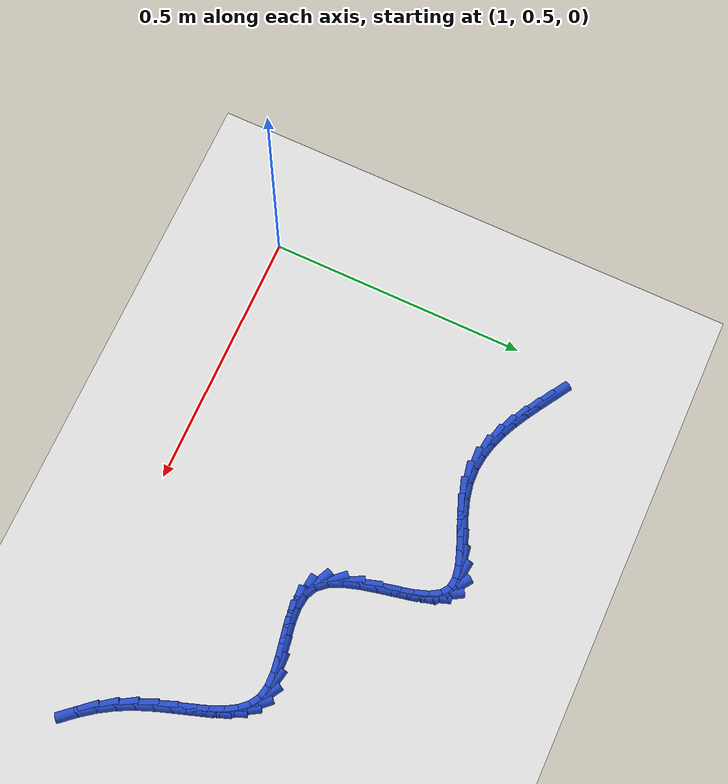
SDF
<sdf version="1.6">
 <world name="default">
  <model name="ground_plane">
   <static>1</static>
   <link name="link">
    <collision name="collision">
     <geometry><plane><normal>0 0 1</normal><size>100 100</size></plane></geometry>
     <surface><friction><ode><mu>100</mu><mu2>50</mu2></ode></friction></surface>
    </collision>
    <visual name="visual">
     <cast_shadows>0</cast_shadows>
     <geometry><plane><normal>0 0 1</normal><size>100 100</size></plane></geometry>
     <material>
      <script><uri>file://media/materials/scripts/gazebo.material</uri><name>Gazebo/WhiteGlow</name></script>
     </material>
    </visual>
   </link>
  </model>
  <model name="line">
   <link name="link_64">
    <pose>1.0613613626021448 1.0904840678474084 0.01 0 1.57 -0.5577023526416753</pose>
    <collision name="collision">
     <geometry><cylinder><radius>0.01</radius><length>0.08</length></cylinder></geometry>
    </collision>
    <visual name="visual">
     <material>
      <script><name>Gazebo/Blue</name><uri>file://media/materials/scripts/gazebo.material</uri></script>
     </material>
     <geometry><cylinder><radius>0.01</radius><length>0.08</length></cylinder></geometry>
    </visual>
   </link>
   <link name="link_65">
    <pose>1.0863397412017957 1.0749037202740948 0.01 0 1.57 -0.5380360521402066</pose>
    <collision name="collision">
     <geometry><cylinder><radius>0.01</radius><length>0.08</length></cylinder></geometry>
    </collision>
    <visual name="visual">
     <material>
      <script><name>Gazebo/Blue</name><uri>file://media/materials/scripts/gazebo.material</uri></script>
     </material>
     <geometry><cylinder><radius>0.01</radius><length>0.08</length></cylinder></geometry>
    </visual>
   </link>
   <link name="link_66">
    <pose>1.1116576927726431 1.059794900164531 0.01 0 1.57 -0.4981963521127707</pose>
    <collision name="collision">
     <geometry><cylinder><radius>0.01</radius><length>0.08</length></cylinder></geometry>
    </collision>
    <visual name="visual">
     <material>
      <script><name>Gazebo/Blue</name><uri>file://media/materials/scripts/gazebo.material</uri></script>
     </material>
     <geometry><cylinder><radius>0.01</radius><length>0.08</length></cylinder></geometry>
    </visual>
   </link>
   <link name="link_67">
    <pose>1.1374019233252106 1.0457909950773805 0.01 0 1.57 -0.4370097366161705</pose>
    <collision name="collision">
     <geometry><cylinder><radius>0.01</radius><length>0.08</length></cylinder></geometry>
    </collision>
    <visual name="visual">
     <material>
      <script><name>Gazebo/Blue</name><uri>file://media/materials/scripts/gazebo.material</uri></script>
     </material>
     <geometry><cylinder><radius>0.01</radius><length>0.08</length></cylinder></geometry>
    </visual>
   </link>
   <link name="link_68">
    <pose>1.1636591388700213 1.033525392571308 0.01 0 1.57 -0.35296621191783484</pose>
    <collision name="collision">
     <geometry><cylinder><radius>0.01</radius><length>0.08</length></cylinder></geometry>
    </collision>
    <visual name="visual">
     <material>
      <script><name>Gazebo/Blue</name><uri>file://media/materials/scripts/gazebo.material</uri></script>
     </material>
     <geometry><cylinder><radius>0.01</radius><length>0.08</length></cylinder></geometry>
    </visual>
   </link>
   <link name="link_69">
    <pose>1.1905160454175991 1.0236314802049775 0.01 0 1.57 -0.24508147279829431</pose>
    <collision name="collision">
     <geometry><cylinder><radius>0.01</radius><length>0.08</length></cylinder></geometry>
    </collision>
    <visual name="visual">
     <material>
      <script><name>Gazebo/Blue</name><uri>file://media/materials/scripts/gazebo.material</uri></script>
     </material>
     <geometry><cylinder><radius>0.01</radius><length>0.08</length></cylinder></geometry>
    </visual>
   </link>
   <link name="link_70">
    <pose>1.2180593489784677 1.0167426455370534 0.01 0 1.57 -0.11428729150965329</pose>
    <collision name="collision">
     <geometry><cylinder><radius>0.01</radius><length>0.08</length></cylinder></geometry>
    </collision>
    <visual name="visual">
     <material>
      <script><name>Gazebo/Blue</name><uri>file://media/materials/scripts/gazebo.material</uri></script>
     </material>
     <geometry><cylinder><radius>0.01</radius><length>0.08</length></cylinder></geometry>
    </visual>
   </link>
   <link name="link_71">
    <pose>1.2463757555631507 1.0134922761262006 0.01 0 1.57 0.034996531459187845</pose>
    <collision name="collision">
     <geometry><cylinder><radius>0.01</radius><length>0.08</length></cylinder></geometry>
    </collision>
    <visual name="visual">
     <material>
      <script><name>Gazebo/Blue</name><uri>file://media/materials/scripts/gazebo.material</uri></script>
     </material>
     <geometry><cylinder><radius>0.01</radius><length>0.08</length></cylinder></geometry>
    </visual>
   </link>
   <link name="link_72">
    <pose>1.2755519711821708 1.0145137595310822 0.01 0 1.57 0.19273076693864225</pose>
    <collision name="collision">
     <geometry><cylinder><radius>0.01</radius><length>0.08</length></cylinder></geometry>
    </collision>
    <visual name="visual">
     <material>
      <script><name>Gazebo/Blue</name><uri>file://media/materials/scripts/gazebo.material</uri></script>
     </material>
     <geometry><cylinder><radius>0.01</radius><length>0.08</length></cylinder></geometry>
    </visual>
   </link>
   <link name="link_73">
    <pose>1.3056576645841445 1.0203889789914729 0.01 0 1.57 0.3146425083497597</pose>
    <collision name="collision">
     <geometry><cylinder><radius>0.01</radius><length>0.08</length></cylinder></geometry>
    </collision>
    <visual name="visual">
     <material>
      <script><name>Gazebo/Blue</name><uri>file://media/materials/scripts/gazebo.material</uri></script>
     </material>
     <geometry><cylinder><radius>0.01</radius><length>0.08</length></cylinder></geometry>
    </visual>
   </link>
   <link name="link_74">
    <pose>1.3363222430851602 1.0303688899644101 0.01 0 1.57 0.3738013823674872</pose>
    <collision name="collision">
     <geometry><cylinder><radius>0.01</radius><length>0.08</length></cylinder></geometry>
    </collision>
    <visual name="visual">
     <material>
      <script><name>Gazebo/Blue</name><uri>file://media/materials/scripts/gazebo.material</uri></script>
     </material>
     <geometry><cylinder><radius>0.01</radius><length>0.08</length></cylinder></geometry>
    </visual>
   </link>
   <link name="link_75">
    <pose>1.3667061539668321 1.0422867631115629 0.01 0 1.57 0.37825981146786636</pose>
    <collision name="collision">
     <geometry><cylinder><radius>0.01</radius><length>0.08</length></cylinder></geometry>
    </collision>
    <visual name="visual">
     <material>
      <script><name>Gazebo/Blue</name><uri>file://media/materials/scripts/gazebo.material</uri></script>
     </material>
     <geometry><cylinder><radius>0.01</radius><length>0.08</length></cylinder></geometry>
    </visual>
   </link>
   <link name="link_76">
    <pose>1.395947060352348 1.0539069916794725 0.01 0 1.57 0.3220299427260602</pose>
    <collision name="collision">
     <geometry><cylinder><radius>0.01</radius><length>0.08</length></cylinder></geometry>
    </collision>
    <visual name="visual">
     <material>
      <script><name>Gazebo/Blue</name><uri>file://media/materials/scripts/gazebo.material</uri></script>
     </material>
     <geometry><cylinder><radius>0.01</radius><length>0.08</length></cylinder></geometry>
    </visual>
   </link>
   <link name="link_77">
    <pose>1.423182625364898 1.062993968914682 0.01 0 1.57 0.17538465028722955</pose>
    <collision name="collision">
     <geometry><cylinder><radius>0.01</radius><length>0.08</length></cylinder></geometry>
    </collision>
    <visual name="visual">
     <material>
      <script><name>Gazebo/Blue</name><uri>file://media/materials/scripts/gazebo.material</uri></script>
     </material>
     <geometry><cylinder><radius>0.01</radius><length>0.08</length></cylinder></geometry>
    </visual>
   </link>
   <link name="link_78">
    <pose>1.447550512127672 1.0673120880637341 0.01 0 1.57 -0.12943807461948464</pose>
    <collision name="collision">
     <geometry><cylinder><radius>0.01</radius><length>0.08</length></cylinder></geometry>
    </collision>
    <visual name="visual">
     <material>
      <script><name>Gazebo/Blue</name><uri>file://media/materials/scripts/gazebo.material</uri></script>
     </material>
     <geometry><cylinder><radius>0.01</radius><length>0.08</length></cylinder></geometry>
    </visual>
   </link>
   <link name="link_79">
    <pose>1.4681883837638576 1.0646257423731702 0.01 0 1.57 -0.6248769603486185</pose>
    <collision name="collision">
     <geometry><cylinder><radius>0.01</radius><length>0.08</length></cylinder></geometry>
    </collision>
    <visual name="visual">
     <material>
      <script><name>Gazebo/Blue</name><uri>file://media/materials/scripts/gazebo.material</uri></script>
     </material>
     <geometry><cylinder><radius>0.01</radius><length>0.08</length></cylinder></geometry>
    </visual>
   </link>
   <link name="link_80">
    <pose>1.4843564554706972 1.052963754758348 0.01 0 1.57 -1.024371086084633</pose>
    <collision name="collision">
     <geometry><cylinder><radius>0.01</radius><length>0.08</length></cylinder></geometry>
    </collision>
    <visual name="visual">
     <material>
      <script><name>Gazebo/Blue</name><uri>file://media/materials/scripts/gazebo.material</uri></script>
     </material>
     <geometry><cylinder><radius>0.01</radius><length>0.08</length></cylinder></geometry>
    </visual>
   </link>
   <link name="link_81">
    <pose>1.4965224535259907 1.0329603855178144 0.01 0 1.57 -1.2294171807697014</pose>
    <collision name="collision">
     <geometry><cylinder><radius>0.01</radius><length>0.08</length></cylinder></geometry>
    </collision>
    <visual name="visual">
     <material>
      <script><name>Gazebo/Blue</name><uri>file://media/materials/scripts/gazebo.material</uri></script>
     </material>
     <geometry><cylinder><radius>0.01</radius><length>0.08</length></cylinder></geometry>
    </visual>
   </link>
   <link name="link_82">
    <pose>1.5058410668014626 1.006732148862219 0.01 0 1.57 -1.3241421969394336</pose>
    <collision name="collision">
     <geometry><cylinder><radius>0.01</radius><length>0.08</length></cylinder></geometry>
    </collision>
    <visual name="visual">
     <material>
      <script><name>Gazebo/Blue</name><uri>file://media/materials/scripts/gazebo.material</uri></script>
     </material>
     <geometry><cylinder><radius>0.01</radius><length>0.08</length></cylinder></geometry>
    </visual>
   </link>
   <link name="link_83">
    <pose>1.5134749267230345 0.9764126965903895 0.01 0 1.57 -1.353927051850173</pose>
    <collision name="collision">
     <geometry><cylinder><radius>0.01</radius><length>0.08</length></cylinder></geometry>
    </collision>
    <visual name="visual">
     <material>
      <script><name>Gazebo/Blue</name><uri>file://media/materials/scripts/gazebo.material</uri></script>
     </material>
     <geometry><cylinder><radius>0.01</radius><length>0.08</length></cylinder></geometry>
    </visual>
   </link>
   <link name="link_84">
    <pose>1.5205866647166275 0.9441356805011556 0.01 0 1.57 -1.3338372518909762</pose>
    <collision name="collision">
     <geometry><cylinder><radius>0.01</radius><length>0.08</length></cylinder></geometry>
    </collision>
    <visual name="visual">
     <material>
      <script><name>Gazebo/Blue</name><uri>file://media/materials/scripts/gazebo.material</uri></script>
     </material>
     <geometry><cylinder><radius>0.01</radius><length>0.08</length></cylinder></geometry>
    </visual>
   </link>
   <link name="link_85">
    <pose>1.5283389122081614 0.9120347523933439 0.01 0 1.57 -1.2604173127748963</pose>
    <collision name="collision">
     <geometry><cylinder><radius>0.01</radius><length>0.08</length></cylinder></geometry>
    </collision>
    <visual name="visual">
     <material>
      <script><name>Gazebo/Blue</name><uri>file://media/materials/scripts/gazebo.material</uri></script>
     </material>
     <geometry><cylinder><radius>0.01</radius><length>0.08</length></cylinder></geometry>
    </visual>
   </link>
   <link name="link_86">
    <pose>1.5378943006235577 0.882243564065783 0.01 0 1.57 -1.1119808678166883</pose>
    <collision name="collision">
     <geometry><cylinder><radius>0.01</radius><length>0.08</length></cylinder></geometry>
    </collision>
    <visual name="visual">
     <material>
      <script><name>Gazebo/Blue</name><uri>file://media/materials/scripts/gazebo.material</uri></script>
     </material>
     <geometry><cylinder><radius>0.01</radius><length>0.08</length></cylinder></geometry>
    </visual>
   </link>
   <link name="link_87">
    <pose>1.550415461388737 0.8568957673173019 0.01 0 1.57 -0.8452129424763841</pose>
    <collision name="collision">
     <geometry><cylinder><radius>0.01</radius><length>0.08</length></cylinder></geometry>
    </collision>
    <visual name="visual">
     <material>
      <script><name>Gazebo/Blue</name><uri>file://media/materials/scripts/gazebo.material</uri></script>
     </material>
     <geometry><cylinder><radius>0.01</radius><length>0.08</length></cylinder></geometry>
    </visual>
   </link>
   <link name="link_88">
    <pose>1.567065025929621 0.8381250139467282 0.01 0 1.57 -0.44976752449706536</pose>
    <collision name="collision">
     <geometry><cylinder><radius>0.01</radius><length>0.08</length></cylinder></geometry>
    </collision>
    <visual name="visual">
     <material>
      <script><name>Gazebo/Blue</name><uri>file://media/materials/scripts/gazebo.material</uri></script>
     </material>
     <geometry><cylinder><radius>0.01</radius><length>0.08</length></cylinder></geometry>
    </visual>
   </link>
   <link name="link_89">
    <pose>1.5887605983582476 0.8276510776798632 0.01 0 1.57 -0.12256960538144855</pose>
    <collision name="collision">
     <geometry><cylinder><radius>0.01</radius><length>0.08</length></cylinder></geometry>
    </collision>
    <visual name="visual">
     <material>
      <script><name>Gazebo/Blue</name><uri>file://media/materials/scripts/gazebo.material</uri></script>
     </material>
     <geometry><cylinder><radius>0.01</radius><length>0.08</length></cylinder></geometry>
    </visual>
   </link>
   <link name="link_90">
    <pose>1.6147920641278206 0.8244443364658796 0.01 0 1.57 0.06578133367297269</pose>
    <collision name="collision">
     <geometry><cylinder><radius>0.01</radius><length>0.08</length></cylinder></geometry>
    </collision>
    <visual name="visual">
     <material>
      <script><name>Gazebo/Blue</name><uri>file://media/materials/scripts/gazebo.material</uri></script>
     </material>
     <geometry><cylinder><radius>0.01</radius><length>0.08</length></cylinder></geometry>
    </visual>
   </link>
   <link name="link_91">
    <pose>1.643785744387821 0.8263543351884306 0.01 0 1.57 0.15802219479736243</pose>
    <collision name="collision">
     <geometry><cylinder><radius>0.01</radius><length>0.08</length></cylinder></geometry>
    </collision>
    <visual name="visual">
     <material>
      <script><name>Gazebo/Blue</name><uri>file://media/materials/scripts/gazebo.material</uri></script>
     </material>
     <geometry><cylinder><radius>0.01</radius><length>0.08</length></cylinder></geometry>
    </visual>
   </link>
   <link name="link_92">
    <pose>1.6743660101602382 0.8312273247514318 0.01 0 1.57 0.18248755339680497</pose>
    <collision name="collision">
     <geometry><cylinder><radius>0.01</radius><length>0.08</length></cylinder></geometry>
    </collision>
    <visual name="visual">
     <material>
      <script><name>Gazebo/Blue</name><uri>file://media/materials/scripts/gazebo.material</uri></script>
     </material>
     <geometry><cylinder><radius>0.01</radius><length>0.08</length></cylinder></geometry>
    </visual>
   </link>
   <link name="link_93">
    <pose>1.7051572324670639 0.8369095560587986 0.01 0 1.57 0.14538044019443752</pose>
    <collision name="collision">
     <geometry><cylinder><radius>0.01</radius><length>0.08</length></cylinder></geometry>
    </collision>
    <visual name="visual">
     <material>
      <script><name>Gazebo/Blue</name><uri>file://media/materials/scripts/gazebo.material</uri></script>
     </material>
     <geometry><cylinder><radius>0.01</radius><length>0.08</length></cylinder></geometry>
    </visual>
   </link>
   <link name="link_94">
    <pose>1.7347837823302905 0.8412472800144472 0.01 0 1.57 0.030982470203543482</pose>
    <collision name="collision">
     <geometry><cylinder><radius>0.01</radius><length>0.08</length></cylinder></geometry>
    </collision>
    <visual name="visual">
     <material>
      <script><name>Gazebo/Blue</name><uri>file://media/materials/scripts/gazebo.material</uri></script>
     </material>
     <geometry><cylinder><radius>0.01</radius><length>0.08</length></cylinder></geometry>
    </visual>
   </link>
   <link name="link_95">
    <pose>1.7618700307719073 0.8420867475222927 0.01 0 1.57 -0.20276508945635702</pose>
    <collision name="collision">
     <geometry><cylinder><radius>0.01</radius><length>0.08</length></cylinder></geometry>
    </collision>
    <visual name="visual">
     <material>
      <script><name>Gazebo/Blue</name><uri>file://media/materials/scripts/gazebo.material</uri></script>
     </material>
     <geometry><cylinder><radius>0.01</radius><length>0.08</length></cylinder></geometry>
    </visual>
   </link>
   <link name="link_96">
    <pose>1.7850714352187382 0.8373167622428599 0.01 0 1.57 -0.531923736801487</pose>
    <collision name="collision">
     <geometry><cylinder><radius>0.01</radius><length>0.08</length></cylinder></geometry>
    </collision>
    <visual name="visual">
     <material>
      <script><name>Gazebo/Blue</name><uri>file://media/materials/scripts/gazebo.material</uri></script>
     </material>
     <geometry><cylinder><radius>0.01</radius><length>0.08</length></cylinder></geometry>
    </visual>
   </link>
   <link name="link_97">
    <pose>1.8040213161989973 0.8261646798749316 0.01 0 1.57 -0.8241413238072702</pose>
    <collision name="collision">
     <geometry><cylinder><radius>0.01</radius><length>0.08</length></cylinder></geometry>
    </collision>
    <visual name="visual">
     <material>
      <script><name>Gazebo/Blue</name><uri>file://media/materials/scripts/gazebo.material</uri></script>
     </material>
     <geometry><cylinder><radius>0.01</radius><length>0.08</length></cylinder></geometry>
    </visual>
   </link>
   <link name="link_98">
    <pose>1.8195039515183808 0.8094333488498966 0.01 0 1.57 -1.0298543267364204</pose>
    <collision name="collision">
     <geometry><cylinder><radius>0.01</radius><length>0.08</length></cylinder></geometry>
    </collision>
    <visual name="visual">
     <material>
      <script><name>Gazebo/Blue</name><uri>file://media/materials/scripts/gazebo.material</uri></script>
     </material>
     <geometry><cylinder><radius>0.01</radius><length>0.08</length></cylinder></geometry>
    </visual>
   </link>
   <link name="link_99">
    <pose>1.8323696127387503 0.7880159534311211 0.01 0 1.57 -1.1560755397837523</pose>
    <collision name="collision">
     <geometry><cylinder><radius>0.01</radius><length>0.08</length></cylinder></geometry>
    </collision>
    <visual name="visual">
     <material>
      <script><name>Gazebo/Blue</name><uri>file://media/materials/scripts/gazebo.material</uri></script>
     </material>
     <geometry><cylinder><radius>0.01</radius><length>0.08</length></cylinder></geometry>
    </visual>
   </link>
   <link name="link_100">
    <pose>1.8434685714219656 0.762805677881973 0.01 0 1.57 -1.2232600517624226</pose>
    <collision name="collision">
     <geometry><cylinder><radius>0.01</radius><length>0.08</length></cylinder></geometry>
    </collision>
    <visual name="visual">
     <material>
      <script><name>Gazebo/Blue</name><uri>file://media/materials/scripts/gazebo.material</uri></script>
     </material>
     <geometry><cylinder><radius>0.01</radius><length>0.08</length></cylinder></geometry>
    </visual>
   </link>
   <link name="link_101">
    <pose>1.8536510991298867 0.7346957064658185 0.01 0 1.57 -1.2467303435878516</pose>
    <collision name="collision">
     <geometry><cylinder><radius>0.01</radius><length>0.08</length></cylinder></geometry>
    </collision>
    <visual name="visual">
     <material>
      <script><name>Gazebo/Blue</name><uri>file://media/materials/scripts/gazebo.material</uri></script>
     </material>
     <geometry><cylinder><radius>0.01</radius><length>0.08</length></cylinder></geometry>
    </visual>
   </link>
   <link name="link_102">
    <pose>1.8637674674243758 0.7045792234460246 0.01 0 1.57 -1.234976214047509</pose>
    <collision name="collision">
     <geometry><cylinder><radius>0.01</radius><length>0.08</length></cylinder></geometry>
    </collision>
    <visual name="visual">
     <material>
      <script><name>Gazebo/Blue</name><uri>file://media/materials/scripts/gazebo.material</uri></script>
     </material>
     <geometry><cylinder><radius>0.01</radius><length>0.08</length></cylinder></geometry>
    </visual>
   </link>
   <link name="link_103">
    <pose>1.8746679478672927 0.6733494130859586 0.01 0 1.57 -1.1915272610967342</pose>
    <collision name="collision">
     <geometry><cylinder><radius>0.01</radius><length>0.08</length></cylinder></geometry>
    </collision>
    <visual name="visual">
     <material>
      <script><name>Gazebo/Blue</name><uri>file://media/materials/scripts/gazebo.material</uri></script>
     </material>
     <geometry><cylinder><radius>0.01</radius><length>0.08</length></cylinder></geometry>
    </visual>
   </link>
   <link name="link_104">
    <pose>1.887202812020497 0.641899459648987 0.01 0 1.57 -1.116784584855161</pose>
    <collision name="collision">
     <geometry><cylinder><radius>0.01</radius><length>0.08</length></cylinder></geometry>
    </collision>
    <visual name="visual">
     <material>
      <script><name>Gazebo/Blue</name><uri>file://media/materials/scripts/gazebo.material</uri></script>
     </material>
     <geometry><cylinder><radius>0.01</radius><length>0.08</length></cylinder></geometry>
    </visual>
   </link>
   <link name="link_105">
    <pose>1.9022223314458504 0.6111225473984769 0.01 0 1.57 -1.0182394905662593</pose>
    <collision name="collision">
     <geometry><cylinder><radius>0.01</radius><length>0.08</length></cylinder></geometry>
    </collision>
    <visual name="visual">
     <material>
      <script><name>Gazebo/Blue</name><uri>file://media/materials/scripts/gazebo.material</uri></script>
     </material>
     <geometry><cylinder><radius>0.01</radius><length>0.08</length></cylinder></geometry>
    </visual>
   </link>
   <link name="link_106">
    <pose>1.92033533696977 0.5817482970433603 0.01 0 1.57 -0.9293781014497637</pose>
    <collision name="collision">
     <geometry><cylinder><radius>0.01</radius><length>0.08</length></cylinder></geometry>
    </collision>
    <visual name="visual">
     <material>
      <script><name>Gazebo/Blue</name><uri>file://media/materials/scripts/gazebo.material</uri></script>
     </material>
     <geometry><cylinder><radius>0.01</radius><length>0.08</length></cylinder></geometry>
    </visual>
   </link>
   <link name="link_107">
    <pose>1.9411729168338843 0.553843959489077 0.01 0 1.57 -0.8578057602681795</pose>
    <collision name="collision">
     <geometry><cylinder><radius>0.01</radius><length>0.08</length></cylinder></geometry>
    </collision>
    <visual name="visual">
     <material>
      <script><name>Gazebo/Blue</name><uri>file://media/materials/scripts/gazebo.material</uri></script>
     </material>
     <geometry><cylinder><radius>0.01</radius><length>0.08</length></cylinder></geometry>
    </visual>
   </link>
  </model>
 </world>
</sdf>
